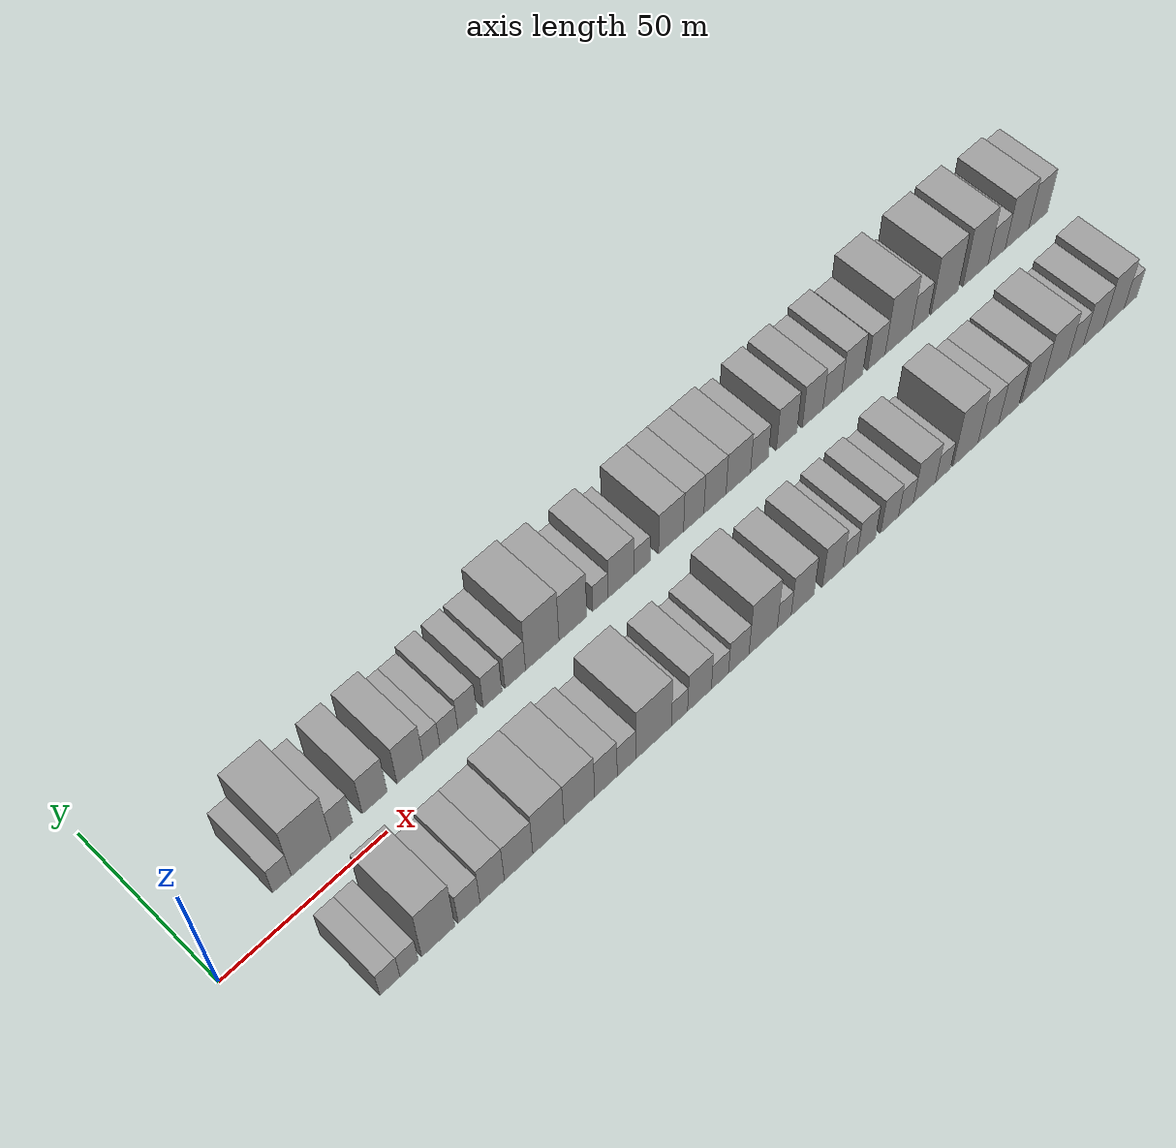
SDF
<sdf version="1.6">
 <world name="default">
  <scene>
   <sky><clouds><speed>12</speed></clouds></sky>
   <ambient>0.4 0.4 0.4 1</ambient>
   <background>0.7 0.7 0.7 1</background>
   <shadows>1</shadows>
  </scene>
  <gravity>0 0 -9.8066</gravity>
  <magnetic_field>6e-06 2.3e-05 -4.2e-05</magnetic_field>
  <physics default="0" name="default_physics" type="ode">
   <ode>
    <solver>
     <type>quick</type>
     <iters>10</iters>
     <sor>1.0</sor>
     <use_dynamic_moi_rescaling>0</use_dynamic_moi_rescaling>
    </solver>
    <constraints>
     <cfm>0</cfm>
     <erp>0.2</erp>
     <contact_max_correcting_vel>100</contact_max_correcting_vel>
     <contact_surface_layer>0.001</contact_surface_layer>
    </constraints>
   </ode>
   <max_step_size>0.004</max_step_size>
   <real_time_factor>1</real_time_factor>
   <real_time_update_rate>250</real_time_update_rate>
  </physics>
  <light name="sun" type="directional">
   <pose>0 0 10 0 0 0</pose>
   <diffuse>0.8 0.8 0.8 1</diffuse>
   <specular>0.2 0.2 0.2 1</specular>
   <attenuation>
    <range>1000</range>
    <constant>0.9</constant>
    <linear>0.01</linear>
    <quadratic>0.001</quadratic>
   </attenuation>
   <direction>-0.5 0.1 -0.9</direction>
  </light>
  <model name="building_1">
   <static>1</static>
   <pose>24.7903 17.5000 0 0.000000 0.000000 1.570796</pose>
   <link name="link">
    <pose>0 0 6.00 0 0 0</pose>
    <collision name="collision"><geometry><box><size>20.0000 5.5807 12.0000</size></box></geometry></collision>
    <visual name="visual">
     <cast_shadows>0</cast_shadows>
     <geometry><box><size>20.0000 5.5807 12.0000</size></box></geometry>
     <material>
      <script>
       <uri>model://grey_wall/materials/scripts</uri>
       <uri>model://grey_wall/materials/textures</uri>
       <name>vrc/grey_wall</name>
      </script>
     </material>
    </visual>
   </link>
  </model>
  <model name="building_2">
   <static>1</static>
   <pose>33.5785 17.5000 0 0.000000 0.000000 1.570796</pose>
   <link name="link">
    <pose>0 0 12.00 0 0 0</pose>
    <collision name="collision"><geometry><box><size>20.0000 11.9957 24.0000</size></box></geometry></collision>
    <visual name="visual">
     <cast_shadows>0</cast_shadows>
     <geometry><box><size>20.0000 11.9957 24.0000</size></box></geometry>
     <material>
      <script>
       <uri>model://grey_wall/materials/scripts</uri>
       <uri>model://grey_wall/materials/textures</uri>
       <name>vrc/grey_wall</name>
      </script>
     </material>
    </visual>
   </link>
  </model>
  <model name="building_3">
   <static>1</static>
   <pose>42.7927 17.5000 0 0.000000 0.000000 1.570796</pose>
   <link name="link">
    <pose>0 0 7.50 0 0 0</pose>
    <collision name="collision"><geometry><box><size>20.0000 6.4326 15.0000</size></box></geometry></collision>
    <visual name="visual">
     <cast_shadows>0</cast_shadows>
     <geometry><box><size>20.0000 6.4326 15.0000</size></box></geometry>
     <material>
      <script>
       <uri>model://grey_wall/materials/scripts</uri>
       <uri>model://grey_wall/materials/textures</uri>
       <name>vrc/grey_wall</name>
      </script>
     </material>
    </visual>
   </link>
  </model>
  <model name="building_4">
   <static>1</static>
   <pose>52.8391 17.5000 0 0.000000 0.000000 1.570796</pose>
   <link name="link">
    <pose>0 0 9.00 0 0 0</pose>
    <collision name="collision"><geometry><box><size>20.0000 7.6602 18.0000</size></box></geometry></collision>
    <visual name="visual">
     <cast_shadows>0</cast_shadows>
     <geometry><box><size>20.0000 7.6602 18.0000</size></box></geometry>
     <material>
      <script>
       <uri>model://grey_wall/materials/scripts</uri>
       <uri>model://grey_wall/materials/textures</uri>
       <name>vrc/grey_wall</name>
      </script>
     </material>
    </visual>
   </link>
  </model>
  <model name="building_5">
   <static>1</static>
   <pose>63.7903 17.5000 0 0.000000 0.000000 1.570796</pose>
   <link name="link">
    <pose>0 0 9.00 0 0 0</pose>
    <collision name="collision"><geometry><box><size>20.0000 8.2422 18.0000</size></box></geometry></collision>
    <visual name="visual">
     <cast_shadows>0</cast_shadows>
     <geometry><box><size>20.0000 8.2422 18.0000</size></box></geometry>
     <material>
      <script>
       <uri>model://grey_wall/materials/scripts</uri>
       <uri>model://grey_wall/materials/textures</uri>
       <name>vrc/grey_wall</name>
      </script>
     </material>
    </visual>
   </link>
  </model>
  <model name="building_6">
   <static>1</static>
   <pose>70.5453 17.5000 0 0.000000 0.000000 1.570796</pose>
   <link name="link">
    <pose>0 0 6.00 0 0 0</pose>
    <collision name="collision"><geometry><box><size>20.0000 5.2677 12.0000</size></box></geometry></collision>
    <visual name="visual">
     <cast_shadows>0</cast_shadows>
     <geometry><box><size>20.0000 5.2677 12.0000</size></box></geometry>
     <material>
      <script>
       <uri>model://grey_wall/materials/scripts</uri>
       <uri>model://grey_wall/materials/textures</uri>
       <name>vrc/grey_wall</name>
      </script>
     </material>
    </visual>
   </link>
  </model>
  <model name="building_7">
   <static>1</static>
   <pose>76.0698 17.5000 0 0.000000 0.000000 1.570796</pose>
   <link name="link">
    <pose>0 0 6.00 0 0 0</pose>
    <collision name="collision"><geometry><box><size>20.0000 5.7813 12.0000</size></box></geometry></collision>
    <visual name="visual">
     <cast_shadows>0</cast_shadows>
     <geometry><box><size>20.0000 5.7813 12.0000</size></box></geometry>
     <material>
      <script>
       <uri>model://grey_wall/materials/scripts</uri>
       <uri>model://grey_wall/materials/textures</uri>
       <name>vrc/grey_wall</name>
      </script>
     </material>
    </visual>
   </link>
  </model>
  <model name="building_8">
   <static>1</static>
   <pose>82.0250 17.5000 0 0.000000 0.000000 1.570796</pose>
   <link name="link">
    <pose>0 0 7.50 0 0 0</pose>
    <collision name="collision"><geometry><box><size>20.0000 6.1293 15.0000</size></box></geometry></collision>
    <visual name="visual">
     <cast_shadows>0</cast_shadows>
     <geometry><box><size>20.0000 6.1293 15.0000</size></box></geometry>
     <material>
      <script>
       <uri>model://grey_wall/materials/scripts</uri>
       <uri>model://grey_wall/materials/textures</uri>
       <name>vrc/grey_wall</name>
      </script>
     </material>
    </visual>
   </link>
  </model>
  <model name="building_9">
   <static>1</static>
   <pose>90.1376 17.5000 0 0.000000 0.000000 1.570796</pose>
   <link name="link">
    <pose>0 0 7.50 0 0 0</pose>
    <collision name="collision"><geometry><box><size>20.0000 6.0958 15.0000</size></box></geometry></collision>
    <visual name="visual">
     <cast_shadows>0</cast_shadows>
     <geometry><box><size>20.0000 6.0958 15.0000</size></box></geometry>
     <material>
      <script>
       <uri>model://grey_wall/materials/scripts</uri>
       <uri>model://grey_wall/materials/textures</uri>
       <name>vrc/grey_wall</name>
      </script>
     </material>
    </visual>
   </link>
  </model>
  <model name="building_10">
   <static>1</static>
   <pose>97.5536 17.5000 0 0.000000 0.000000 1.570796</pose>
   <link name="link">
    <pose>0 0 7.50 0 0 0</pose>
    <collision name="collision"><geometry><box><size>20.0000 6.7362 15.0000</size></box></geometry></collision>
    <visual name="visual">
     <cast_shadows>0</cast_shadows>
     <geometry><box><size>20.0000 6.7362 15.0000</size></box></geometry>
     <material>
      <script>
       <uri>model://grey_wall/materials/scripts</uri>
       <uri>model://grey_wall/materials/textures</uri>
       <name>vrc/grey_wall</name>
      </script>
     </material>
    </visual>
   </link>
  </model>
  <model name="building_11">
   <static>1</static>
   <pose>106.5154 17.5000 0 0.000000 0.000000 1.570796</pose>
   <link name="link">
    <pose>0 0 12.00 0 0 0</pose>
    <collision name="collision"><geometry><box><size>20.0000 11.1872 24.0000</size></box></geometry></collision>
    <visual name="visual">
     <cast_shadows>0</cast_shadows>
     <geometry><box><size>20.0000 11.1872 24.0000</size></box></geometry>
     <material>
      <script>
       <uri>model://grey_wall/materials/scripts</uri>
       <uri>model://grey_wall/materials/textures</uri>
       <name>vrc/grey_wall</name>
      </script>
     </material>
    </visual>
   </link>
  </model>
  <model name="building_12">
   <static>1</static>
   <pose>116.8096 17.5000 0 0.000000 0.000000 1.570796</pose>
   <link name="link">
    <pose>0 0 10.50 0 0 0</pose>
    <collision name="collision"><geometry><box><size>20.0000 9.4012 21.0000</size></box></geometry></collision>
    <visual name="visual">
     <cast_shadows>0</cast_shadows>
     <geometry><box><size>20.0000 9.4012 21.0000</size></box></geometry>
     <material>
      <script>
       <uri>model://grey_wall/materials/scripts</uri>
       <uri>model://grey_wall/materials/textures</uri>
       <name>vrc/grey_wall</name>
      </script>
     </material>
    </visual>
   </link>
  </model>
  <model name="building_13">
   <static>1</static>
   <pose>126.1650 17.5000 0 0.000000 0.000000 1.570796</pose>
   <link name="link">
    <pose>0 0 6.00 0 0 0</pose>
    <collision name="collision"><geometry><box><size>20.0000 5.3096 12.0000</size></box></geometry></collision>
    <visual name="visual">
     <cast_shadows>0</cast_shadows>
     <geometry><box><size>20.0000 5.3096 12.0000</size></box></geometry>
     <material>
      <script>
       <uri>model://grey_wall/materials/scripts</uri>
       <uri>model://grey_wall/materials/textures</uri>
       <name>vrc/grey_wall</name>
      </script>
     </material>
    </visual>
   </link>
  </model>
  <model name="building_14">
   <static>1</static>
   <pose>133.2115 17.5000 0 0.000000 0.000000 1.570796</pose>
   <link name="link">
    <pose>0 0 9.00 0 0 0</pose>
    <collision name="collision"><geometry><box><size>20.0000 8.7833 18.0000</size></box></geometry></collision>
    <visual name="visual">
     <cast_shadows>0</cast_shadows>
     <geometry><box><size>20.0000 8.7833 18.0000</size></box></geometry>
     <material>
      <script>
       <uri>model://grey_wall/materials/scripts</uri>
       <uri>model://grey_wall/materials/textures</uri>
       <name>vrc/grey_wall</name>
      </script>
     </material>
    </visual>
   </link>
  </model>
  <model name="building_15">
   <static>1</static>
   <pose>140.4692 17.5000 0 0.000000 0.000000 1.570796</pose>
   <link name="link">
    <pose>0 0 6.00 0 0 0</pose>
    <collision name="collision"><geometry><box><size>20.0000 5.7321 12.0000</size></box></geometry></collision>
    <visual name="visual">
     <cast_shadows>0</cast_shadows>
     <geometry><box><size>20.0000 5.7321 12.0000</size></box></geometry>
     <material>
      <script>
       <uri>model://grey_wall/materials/scripts</uri>
       <uri>model://grey_wall/materials/textures</uri>
       <name>vrc/grey_wall</name>
      </script>
     </material>
    </visual>
   </link>
  </model>
  <model name="building_16">
   <static>1</static>
   <pose>150.7560 17.5000 0 0.000000 0.000000 1.570796</pose>
   <link name="link">
    <pose>0 0 9.00 0 0 0</pose>
    <collision name="collision"><geometry><box><size>20.0000 8.8416 18.0000</size></box></geometry></collision>
    <visual name="visual">
     <cast_shadows>0</cast_shadows>
     <geometry><box><size>20.0000 8.8416 18.0000</size></box></geometry>
     <material>
      <script>
       <uri>model://grey_wall/materials/scripts</uri>
       <uri>model://grey_wall/materials/textures</uri>
       <name>vrc/grey_wall</name>
      </script>
     </material>
    </visual>
   </link>
  </model>
  <model name="building_17">
   <static>1</static>
   <pose>158.8325 17.5000 0 0.000000 0.000000 1.570796</pose>
   <link name="link">
    <pose>0 0 9.00 0 0 0</pose>
    <collision name="collision"><geometry><box><size>20.0000 7.3114 18.0000</size></box></geometry></collision>
    <visual name="visual">
     <cast_shadows>0</cast_shadows>
     <geometry><box><size>20.0000 7.3114 18.0000</size></box></geometry>
     <material>
      <script>
       <uri>model://grey_wall/materials/scripts</uri>
       <uri>model://grey_wall/materials/textures</uri>
       <name>vrc/grey_wall</name>
      </script>
     </material>
    </visual>
   </link>
  </model>
  <model name="building_18">
   <static>1</static>
   <pose>166.4875 17.5000 0 0.000000 0.000000 1.570796</pose>
   <link name="link">
    <pose>0 0 9.00 0 0 0</pose>
    <collision name="collision"><geometry><box><size>20.0000 7.9986 18.0000</size></box></geometry></collision>
    <visual name="visual">
     <cast_shadows>0</cast_shadows>
     <geometry><box><size>20.0000 7.9986 18.0000</size></box></geometry>
     <material>
      <script>
       <uri>model://grey_wall/materials/scripts</uri>
       <uri>model://grey_wall/materials/textures</uri>
       <name>vrc/grey_wall</name>
      </script>
     </material>
    </visual>
   </link>
  </model>
  <model name="building_19">
   <static>1</static>
   <pose>174.9716 17.5000 0 0.000000 0.000000 1.570796</pose>
   <link name="link">
    <pose>0 0 9.00 0 0 0</pose>
    <collision name="collision"><geometry><box><size>20.0000 8.9696 18.0000</size></box></geometry></collision>
    <visual name="visual">
     <cast_shadows>0</cast_shadows>
     <geometry><box><size>20.0000 8.9696 18.0000</size></box></geometry>
     <material>
      <script>
       <uri>model://grey_wall/materials/scripts</uri>
       <uri>model://grey_wall/materials/textures</uri>
       <name>vrc/grey_wall</name>
      </script>
     </material>
    </visual>
   </link>
  </model>
  <model name="building_20">
   <static>1</static>
   <pose>182.7605 17.5000 0 0.000000 0.000000 1.570796</pose>
   <link name="link">
    <pose>0 0 7.50 0 0 0</pose>
    <collision name="collision"><geometry><box><size>20.0000 6.6081 15.0000</size></box></geometry></collision>
    <visual name="visual">
     <cast_shadows>0</cast_shadows>
     <geometry><box><size>20.0000 6.6081 15.0000</size></box></geometry>
     <material>
      <script>
       <uri>model://grey_wall/materials/scripts</uri>
       <uri>model://grey_wall/materials/textures</uri>
       <name>vrc/grey_wall</name>
      </script>
     </material>
    </visual>
   </link>
  </model>
  <model name="building_21">
   <static>1</static>
   <pose>192.9308 17.5000 0 0.000000 0.000000 1.570796</pose>
   <link name="link">
    <pose>0 0 9.00 0 0 0</pose>
    <collision name="collision"><geometry><box><size>20.0000 7.7326 18.0000</size></box></geometry></collision>
    <visual name="visual">
     <cast_shadows>0</cast_shadows>
     <geometry><box><size>20.0000 7.7326 18.0000</size></box></geometry>
     <material>
      <script>
       <uri>model://grey_wall/materials/scripts</uri>
       <uri>model://grey_wall/materials/textures</uri>
       <name>vrc/grey_wall</name>
      </script>
     </material>
    </visual>
   </link>
  </model>
  <model name="building_22">
   <static>1</static>
   <pose>202.7216 17.5000 0 0.000000 0.000000 1.570796</pose>
   <link name="link">
    <pose>0 0 9.00 0 0 0</pose>
    <collision name="collision"><geometry><box><size>20.0000 7.8489 18.0000</size></box></geometry></collision>
    <visual name="visual">
     <cast_shadows>0</cast_shadows>
     <geometry><box><size>20.0000 7.8489 18.0000</size></box></geometry>
     <material>
      <script>
       <uri>model://grey_wall/materials/scripts</uri>
       <uri>model://grey_wall/materials/textures</uri>
       <name>vrc/grey_wall</name>
      </script>
     </material>
    </visual>
   </link>
  </model>
  <model name="building_23">
   <static>1</static>
   <pose>210.2408 17.5000 0 0.000000 0.000000 1.570796</pose>
   <link name="link">
    <pose>0 0 7.50 0 0 0</pose>
    <collision name="collision"><geometry><box><size>20.0000 7.1895 15.0000</size></box></geometry></collision>
    <visual name="visual">
     <cast_shadows>0</cast_shadows>
     <geometry><box><size>20.0000 7.1895 15.0000</size></box></geometry>
     <material>
      <script>
       <uri>model://grey_wall/materials/scripts</uri>
       <uri>model://grey_wall/materials/textures</uri>
       <name>vrc/grey_wall</name>
      </script>
     </material>
    </visual>
   </link>
  </model>
  <model name="building_24">
   <static>1</static>
   <pose>217.9297 17.5000 0 0.000000 0.000000 1.570796</pose>
   <link name="link">
    <pose>0 0 9.00 0 0 0</pose>
    <collision name="collision"><geometry><box><size>20.0000 8.1882 18.0000</size></box></geometry></collision>
    <visual name="visual">
     <cast_shadows>0</cast_shadows>
     <geometry><box><size>20.0000 8.1882 18.0000</size></box></geometry>
     <material>
      <script>
       <uri>model://grey_wall/materials/scripts</uri>
       <uri>model://grey_wall/materials/textures</uri>
       <name>vrc/grey_wall</name>
      </script>
     </material>
    </visual>
   </link>
  </model>
  <model name="building_25">
   <static>1</static>
   <pose>227.4332 17.5000 0 0.000000 0.000000 1.570796</pose>
   <link name="link">
    <pose>0 0 7.50 0 0 0</pose>
    <collision name="collision"><geometry><box><size>20.0000 6.8190 15.0000</size></box></geometry></collision>
    <visual name="visual">
     <cast_shadows>0</cast_shadows>
     <geometry><box><size>20.0000 6.8190 15.0000</size></box></geometry>
     <material>
      <script>
       <uri>model://grey_wall/materials/scripts</uri>
       <uri>model://grey_wall/materials/textures</uri>
       <name>vrc/grey_wall</name>
      </script>
     </material>
    </visual>
   </link>
  </model>
  <model name="building_26">
   <static>1</static>
   <pose>236.1009 17.5000 0 0.000000 0.000000 1.570796</pose>
   <link name="link">
    <pose>0 0 12.00 0 0 0</pose>
    <collision name="collision"><geometry><box><size>20.0000 10.5164 24.0000</size></box></geometry></collision>
    <visual name="visual">
     <cast_shadows>0</cast_shadows>
     <geometry><box><size>20.0000 10.5164 24.0000</size></box></geometry>
     <material>
      <script>
       <uri>model://grey_wall/materials/scripts</uri>
       <uri>model://grey_wall/materials/textures</uri>
       <name>vrc/grey_wall</name>
      </script>
     </material>
    </visual>
   </link>
  </model>
  <model name="building_27">
   <static>1</static>
   <pose>244.7884 17.5000 0 0.000000 0.000000 1.570796</pose>
   <link name="link">
    <pose>0 0 7.50 0 0 0</pose>
    <collision name="collision"><geometry><box><size>20.0000 6.8587 15.0000</size></box></geometry></collision>
    <visual name="visual">
     <cast_shadows>0</cast_shadows>
     <geometry><box><size>20.0000 6.8587 15.0000</size></box></geometry>
     <material>
      <script>
       <uri>model://grey_wall/materials/scripts</uri>
       <uri>model://grey_wall/materials/textures</uri>
       <name>vrc/grey_wall</name>
      </script>
     </material>
    </visual>
   </link>
  </model>
  <model name="building_28">
   <static>1</static>
   <pose>254.7375 17.5000 0 0.000000 0.000000 1.570796</pose>
   <link name="link">
    <pose>0 0 12.00 0 0 0</pose>
    <collision name="collision"><geometry><box><size>20.0000 11.0396 24.0000</size></box></geometry></collision>
    <visual name="visual">
     <cast_shadows>0</cast_shadows>
     <geometry><box><size>20.0000 11.0396 24.0000</size></box></geometry>
     <material>
      <script>
       <uri>model://grey_wall/materials/scripts</uri>
       <uri>model://grey_wall/materials/textures</uri>
       <name>vrc/grey_wall</name>
      </script>
     </material>
    </visual>
   </link>
  </model>
  <model name="building_29">
   <static>1</static>
   <pose>267.4569 17.5000 0 0.000000 0.000000 1.570796</pose>
   <link name="link">
    <pose>0 0 12.00 0 0 0</pose>
    <collision name="collision"><geometry><box><size>20.0000 10.3992 24.0000</size></box></geometry></collision>
    <visual name="visual">
     <cast_shadows>0</cast_shadows>
     <geometry><box><size>20.0000 10.3992 24.0000</size></box></geometry>
     <material>
      <script>
       <uri>model://grey_wall/materials/scripts</uri>
       <uri>model://grey_wall/materials/textures</uri>
       <name>vrc/grey_wall</name>
      </script>
     </material>
    </visual>
   </link>
  </model>
  <model name="building_30">
   <static>1</static>
   <pose>276.2368 17.5000 0 0.000000 0.000000 1.570796</pose>
   <link name="link">
    <pose>0 0 7.50 0 0 0</pose>
    <collision name="collision"><geometry><box><size>20.0000 7.1605 15.0000</size></box></geometry></collision>
    <visual name="visual">
     <cast_shadows>0</cast_shadows>
     <geometry><box><size>20.0000 7.1605 15.0000</size></box></geometry>
     <material>
      <script>
       <uri>model://grey_wall/materials/scripts</uri>
       <uri>model://grey_wall/materials/textures</uri>
       <name>vrc/grey_wall</name>
      </script>
     </material>
    </visual>
   </link>
  </model>
  <model name="building_31">
   <static>1</static>
   <pose>284.8316 17.5000 0 0.000000 0.000000 1.570796</pose>
   <link name="link">
    <pose>0 0 10.50 0 0 0</pose>
    <collision name="collision"><geometry><box><size>20.0000 10.0290 21.0000</size></box></geometry></collision>
    <visual name="visual">
     <cast_shadows>0</cast_shadows>
     <geometry><box><size>20.0000 10.0290 21.0000</size></box></geometry>
     <material>
      <script>
       <uri>model://grey_wall/materials/scripts</uri>
       <uri>model://grey_wall/materials/textures</uri>
       <name>vrc/grey_wall</name>
      </script>
     </material>
    </visual>
   </link>
  </model>
  <model name="building_32">
   <static>1</static>
   <pose>293.8147 17.5000 0 0.000000 0.000000 1.570796</pose>
   <link name="link">
    <pose>0 0 9.00 0 0 0</pose>
    <collision name="collision"><geometry><box><size>20.0000 7.9373 18.0000</size></box></geometry></collision>
    <visual name="visual">
     <cast_shadows>0</cast_shadows>
     <geometry><box><size>20.0000 7.9373 18.0000</size></box></geometry>
     <material>
      <script>
       <uri>model://grey_wall/materials/scripts</uri>
       <uri>model://grey_wall/materials/textures</uri>
       <name>vrc/grey_wall</name>
      </script>
     </material>
    </visual>
   </link>
  </model>
  <model name="building_33">
   <static>1</static>
   <pose>25.9741 -17.5000 0 0.000000 0.000000 1.570796</pose>
   <link name="link">
    <pose>0 0 6.00 0 0 0</pose>
    <collision name="collision"><geometry><box><size>20.0000 5.9482 12.0000</size></box></geometry></collision>
    <visual name="visual">
     <cast_shadows>0</cast_shadows>
     <geometry><box><size>20.0000 5.9482 12.0000</size></box></geometry>
     <material>
      <script>
       <uri>model://grey_wall/materials/scripts</uri>
       <uri>model://grey_wall/materials/textures</uri>
       <name>vrc/grey_wall</name>
      </script>
     </material>
    </visual>
   </link>
  </model>
  <model name="building_34">
   <static>1</static>
   <pose>31.6685 -17.5000 0 0.000000 0.000000 1.570796</pose>
   <link name="link">
    <pose>0 0 6.00 0 0 0</pose>
    <collision name="collision"><geometry><box><size>20.0000 5.4406 12.0000</size></box></geometry></collision>
    <visual name="visual">
     <cast_shadows>0</cast_shadows>
     <geometry><box><size>20.0000 5.4406 12.0000</size></box></geometry>
     <material>
      <script>
       <uri>model://grey_wall/materials/scripts</uri>
       <uri>model://grey_wall/materials/textures</uri>
       <name>vrc/grey_wall</name>
      </script>
     </material>
    </visual>
   </link>
  </model>
  <model name="building_35">
   <static>1</static>
   <pose>40.4139 -17.5000 0 0.000000 0.000000 1.570796</pose>
   <link name="link">
    <pose>0 0 12.00 0 0 0</pose>
    <collision name="collision"><geometry><box><size>20.0000 10.0501 24.0000</size></box></geometry></collision>
    <visual name="visual">
     <cast_shadows>0</cast_shadows>
     <geometry><box><size>20.0000 10.0501 24.0000</size></box></geometry>
     <material>
      <script>
       <uri>model://grey_wall/materials/scripts</uri>
       <uri>model://grey_wall/materials/textures</uri>
       <name>vrc/grey_wall</name>
      </script>
     </material>
    </visual>
   </link>
  </model>
  <model name="building_36">
   <static>1</static>
   <pose>49.7984 -17.5000 0 0.000000 0.000000 1.570796</pose>
   <link name="link">
    <pose>0 0 7.50 0 0 0</pose>
    <collision name="collision"><geometry><box><size>20.0000 6.7190 15.0000</size></box></geometry></collision>
    <visual name="visual">
     <cast_shadows>0</cast_shadows>
     <geometry><box><size>20.0000 6.7190 15.0000</size></box></geometry>
     <material>
      <script>
       <uri>model://grey_wall/materials/scripts</uri>
       <uri>model://grey_wall/materials/textures</uri>
       <name>vrc/grey_wall</name>
      </script>
     </material>
    </visual>
   </link>
  </model>
  <model name="building_37">
   <static>1</static>
   <pose>56.9178 -17.5000 0 0.000000 0.000000 1.570796</pose>
   <link name="link">
    <pose>0 0 9.00 0 0 0</pose>
    <collision name="collision"><geometry><box><size>20.0000 7.5198 18.0000</size></box></geometry></collision>
    <visual name="visual">
     <cast_shadows>0</cast_shadows>
     <geometry><box><size>20.0000 7.5198 18.0000</size></box></geometry>
     <material>
      <script>
       <uri>model://grey_wall/materials/scripts</uri>
       <uri>model://grey_wall/materials/textures</uri>
       <name>vrc/grey_wall</name>
      </script>
     </material>
    </visual>
   </link>
  </model>
  <model name="building_38">
   <static>1</static>
   <pose>65.1405 -17.5000 0 0.000000 0.000000 1.570796</pose>
   <link name="link">
    <pose>0 0 9.00 0 0 0</pose>
    <collision name="collision"><geometry><box><size>20.0000 8.9255 18.0000</size></box></geometry></collision>
    <visual name="visual">
     <cast_shadows>0</cast_shadows>
     <geometry><box><size>20.0000 8.9255 18.0000</size></box></geometry>
     <material>
      <script>
       <uri>model://grey_wall/materials/scripts</uri>
       <uri>model://grey_wall/materials/textures</uri>
       <name>vrc/grey_wall</name>
      </script>
     </material>
    </visual>
   </link>
  </model>
  <model name="building_39">
   <static>1</static>
   <pose>74.5633 -17.5000 0 0.000000 0.000000 1.570796</pose>
   <link name="link">
    <pose>0 0 10.50 0 0 0</pose>
    <collision name="collision"><geometry><box><size>20.0000 9.9201 21.0000</size></box></geometry></collision>
    <visual name="visual">
     <cast_shadows>0</cast_shadows>
     <geometry><box><size>20.0000 9.9201 21.0000</size></box></geometry>
     <material>
      <script>
       <uri>model://grey_wall/materials/scripts</uri>
       <uri>model://grey_wall/materials/textures</uri>
       <name>vrc/grey_wall</name>
      </script>
     </material>
    </visual>
   </link>
  </model>
  <model name="building_40">
   <static>1</static>
   <pose>84.4446 -17.5000 0 0.000000 0.000000 1.570796</pose>
   <link name="link">
    <pose>0 0 10.50 0 0 0</pose>
    <collision name="collision"><geometry><box><size>20.0000 9.8425 21.0000</size></box></geometry></collision>
    <visual name="visual">
     <cast_shadows>0</cast_shadows>
     <geometry><box><size>20.0000 9.8425 21.0000</size></box></geometry>
     <material>
      <script>
       <uri>model://grey_wall/materials/scripts</uri>
       <uri>model://grey_wall/materials/textures</uri>
       <name>vrc/grey_wall</name>
      </script>
     </material>
    </visual>
   </link>
  </model>
  <model name="building_41">
   <static>1</static>
   <pose>93.0471 -17.5000 0 0.000000 0.000000 1.570796</pose>
   <link name="link">
    <pose>0 0 9.00 0 0 0</pose>
    <collision name="collision"><geometry><box><size>20.0000 7.3626 18.0000</size></box></geometry></collision>
    <visual name="visual">
     <cast_shadows>0</cast_shadows>
     <geometry><box><size>20.0000 7.3626 18.0000</size></box></geometry>
     <material>
      <script>
       <uri>model://grey_wall/materials/scripts</uri>
       <uri>model://grey_wall/materials/textures</uri>
       <name>vrc/grey_wall</name>
      </script>
     </material>
    </visual>
   </link>
  </model>
  <model name="building_42">
   <static>1</static>
   <pose>99.8479 -17.5000 0 0.000000 0.000000 1.570796</pose>
   <link name="link">
    <pose>0 0 7.50 0 0 0</pose>
    <collision name="collision"><geometry><box><size>20.0000 6.2390 15.0000</size></box></geometry></collision>
    <visual name="visual">
     <cast_shadows>0</cast_shadows>
     <geometry><box><size>20.0000 6.2390 15.0000</size></box></geometry>
     <material>
      <script>
       <uri>model://grey_wall/materials/scripts</uri>
       <uri>model://grey_wall/materials/textures</uri>
       <name>vrc/grey_wall</name>
      </script>
     </material>
    </visual>
   </link>
  </model>
  <model name="building_43">
   <static>1</static>
   <pose>108.8641 -17.5000 0 0.000000 0.000000 1.570796</pose>
   <link name="link">
    <pose>0 0 12.00 0 0 0</pose>
    <collision name="collision"><geometry><box><size>20.0000 11.7935 24.0000</size></box></geometry></collision>
    <visual name="visual">
     <cast_shadows>0</cast_shadows>
     <geometry><box><size>20.0000 11.7935 24.0000</size></box></geometry>
     <material>
      <script>
       <uri>model://grey_wall/materials/scripts</uri>
       <uri>model://grey_wall/materials/textures</uri>
       <name>vrc/grey_wall</name>
      </script>
     </material>
    </visual>
   </link>
  </model>
  <model name="building_44">
   <static>1</static>
   <pose>117.4999 -17.5000 0 0.000000 0.000000 1.570796</pose>
   <link name="link">
    <pose>0 0 6.00 0 0 0</pose>
    <collision name="collision"><geometry><box><size>20.0000 5.4781 12.0000</size></box></geometry></collision>
    <visual name="visual">
     <cast_shadows>0</cast_shadows>
     <geometry><box><size>20.0000 5.4781 12.0000</size></box></geometry>
     <material>
      <script>
       <uri>model://grey_wall/materials/scripts</uri>
       <uri>model://grey_wall/materials/textures</uri>
       <name>vrc/grey_wall</name>
      </script>
     </material>
    </visual>
   </link>
  </model>
  <model name="building_45">
   <static>1</static>
   <pose>124.3053 -17.5000 0 0.000000 0.000000 1.570796</pose>
   <link name="link">
    <pose>0 0 9.00 0 0 0</pose>
    <collision name="collision"><geometry><box><size>20.0000 8.1327 18.0000</size></box></geometry></collision>
    <visual name="visual">
     <cast_shadows>0</cast_shadows>
     <geometry><box><size>20.0000 8.1327 18.0000</size></box></geometry>
     <material>
      <script>
       <uri>model://grey_wall/materials/scripts</uri>
       <uri>model://grey_wall/materials/textures</uri>
       <name>vrc/grey_wall</name>
      </script>
     </material>
    </visual>
   </link>
  </model>
  <model name="building_46">
   <static>1</static>
   <pose>131.3274 -17.5000 0 0.000000 0.000000 1.570796</pose>
   <link name="link">
    <pose>0 0 6.00 0 0 0</pose>
    <collision name="collision"><geometry><box><size>20.0000 5.9116 12.0000</size></box></geometry></collision>
    <visual name="visual">
     <cast_shadows>0</cast_shadows>
     <geometry><box><size>20.0000 5.9116 12.0000</size></box></geometry>
     <material>
      <script>
       <uri>model://grey_wall/materials/scripts</uri>
       <uri>model://grey_wall/materials/textures</uri>
       <name>vrc/grey_wall</name>
      </script>
     </material>
    </visual>
   </link>
  </model>
  <model name="building_47">
   <static>1</static>
   <pose>137.8564 -17.5000 0 0.000000 0.000000 1.570796</pose>
   <link name="link">
    <pose>0 0 7.50 0 0 0</pose>
    <collision name="collision"><geometry><box><size>20.0000 7.1464 15.0000</size></box></geometry></collision>
    <visual name="visual">
     <cast_shadows>0</cast_shadows>
     <geometry><box><size>20.0000 7.1464 15.0000</size></box></geometry>
     <material>
      <script>
       <uri>model://grey_wall/materials/scripts</uri>
       <uri>model://grey_wall/materials/textures</uri>
       <name>vrc/grey_wall</name>
      </script>
     </material>
    </visual>
   </link>
  </model>
  <model name="building_48">
   <static>1</static>
   <pose>146.4099 -17.5000 0 0.000000 0.000000 1.570796</pose>
   <link name="link">
    <pose>0 0 12.00 0 0 0</pose>
    <collision name="collision"><geometry><box><size>20.0000 9.9606 24.0000</size></box></geometry></collision>
    <visual name="visual">
     <cast_shadows>0</cast_shadows>
     <geometry><box><size>20.0000 9.9606 24.0000</size></box></geometry>
     <material>
      <script>
       <uri>model://grey_wall/materials/scripts</uri>
       <uri>model://grey_wall/materials/textures</uri>
       <name>vrc/grey_wall</name>
      </script>
     </material>
    </visual>
   </link>
  </model>
  <model name="building_49">
   <static>1</static>
   <pose>153.8694 -17.5000 0 0.000000 0.000000 1.570796</pose>
   <link name="link">
    <pose>0 0 6.00 0 0 0</pose>
    <collision name="collision"><geometry><box><size>20.0000 4.9584 12.0000</size></box></geometry></collision>
    <visual name="visual">
     <cast_shadows>0</cast_shadows>
     <geometry><box><size>20.0000 4.9584 12.0000</size></box></geometry>
     <material>
      <script>
       <uri>model://grey_wall/materials/scripts</uri>
       <uri>model://grey_wall/materials/textures</uri>
       <name>vrc/grey_wall</name>
      </script>
     </material>
    </visual>
   </link>
  </model>
  <model name="building_50">
   <static>1</static>
   <pose>160.4737 -17.5000 0 0.000000 0.000000 1.570796</pose>
   <link name="link">
    <pose>0 0 9.00 0 0 0</pose>
    <collision name="collision"><geometry><box><size>20.0000 8.2502 18.0000</size></box></geometry></collision>
    <visual name="visual">
     <cast_shadows>0</cast_shadows>
     <geometry><box><size>20.0000 8.2502 18.0000</size></box></geometry>
     <material>
      <script>
       <uri>model://grey_wall/materials/scripts</uri>
       <uri>model://grey_wall/materials/textures</uri>
       <name>vrc/grey_wall</name>
      </script>
     </material>
    </visual>
   </link>
  </model>
  <model name="building_51">
   <static>1</static>
   <pose>171.4000 -17.5000 0 0.000000 0.000000 1.570796</pose>
   <link name="link">
    <pose>0 0 9.00 0 0 0</pose>
    <collision name="collision"><geometry><box><size>20.0000 7.6023 18.0000</size></box></geometry></collision>
    <visual name="visual">
     <cast_shadows>0</cast_shadows>
     <geometry><box><size>20.0000 7.6023 18.0000</size></box></geometry>
     <material>
      <script>
       <uri>model://grey_wall/materials/scripts</uri>
       <uri>model://grey_wall/materials/textures</uri>
       <name>vrc/grey_wall</name>
      </script>
     </material>
    </visual>
   </link>
  </model>
  <model name="building_52">
   <static>1</static>
   <pose>177.7987 -17.5000 0 0.000000 0.000000 1.570796</pose>
   <link name="link">
    <pose>0 0 6.00 0 0 0</pose>
    <collision name="collision"><geometry><box><size>20.0000 5.1952 12.0000</size></box></geometry></collision>
    <visual name="visual">
     <cast_shadows>0</cast_shadows>
     <geometry><box><size>20.0000 5.1952 12.0000</size></box></geometry>
     <material>
      <script>
       <uri>model://grey_wall/materials/scripts</uri>
       <uri>model://grey_wall/materials/textures</uri>
       <name>vrc/grey_wall</name>
      </script>
     </material>
    </visual>
   </link>
  </model>
  <model name="building_53">
   <static>1</static>
   <pose>183.7909 -17.5000 0 0.000000 0.000000 1.570796</pose>
   <link name="link">
    <pose>0 0 7.50 0 0 0</pose>
    <collision name="collision"><geometry><box><size>20.0000 6.7891 15.0000</size></box></geometry></collision>
    <visual name="visual">
     <cast_shadows>0</cast_shadows>
     <geometry><box><size>20.0000 6.7891 15.0000</size></box></geometry>
     <material>
      <script>
       <uri>model://grey_wall/materials/scripts</uri>
       <uri>model://grey_wall/materials/textures</uri>
       <name>vrc/grey_wall</name>
      </script>
     </material>
    </visual>
   </link>
  </model>
  <model name="building_54">
   <static>1</static>
   <pose>192.5304 -17.5000 0 0.000000 0.000000 1.570796</pose>
   <link name="link">
    <pose>0 0 7.50 0 0 0</pose>
    <collision name="collision"><geometry><box><size>20.0000 6.6899 15.0000</size></box></geometry></collision>
    <visual name="visual">
     <cast_shadows>0</cast_shadows>
     <geometry><box><size>20.0000 6.6899 15.0000</size></box></geometry>
     <material>
      <script>
       <uri>model://grey_wall/materials/scripts</uri>
       <uri>model://grey_wall/materials/textures</uri>
       <name>vrc/grey_wall</name>
      </script>
     </material>
    </visual>
   </link>
  </model>
  <model name="building_55">
   <static>1</static>
   <pose>198.6888 -17.5000 0 0.000000 0.000000 1.570796</pose>
   <link name="link">
    <pose>0 0 6.00 0 0 0</pose>
    <collision name="collision"><geometry><box><size>20.0000 5.6268 12.0000</size></box></geometry></collision>
    <visual name="visual">
     <cast_shadows>0</cast_shadows>
     <geometry><box><size>20.0000 5.6268 12.0000</size></box></geometry>
     <material>
      <script>
       <uri>model://grey_wall/materials/scripts</uri>
       <uri>model://grey_wall/materials/textures</uri>
       <name>vrc/grey_wall</name>
      </script>
     </material>
    </visual>
   </link>
  </model>
  <model name="building_56">
   <static>1</static>
   <pose>205.7583 -17.5000 0 0.000000 0.000000 1.570796</pose>
   <link name="link">
    <pose>0 0 9.00 0 0 0</pose>
    <collision name="collision"><geometry><box><size>20.0000 8.5123 18.0000</size></box></geometry></collision>
    <visual name="visual">
     <cast_shadows>0</cast_shadows>
     <geometry><box><size>20.0000 8.5123 18.0000</size></box></geometry>
     <material>
      <script>
       <uri>model://grey_wall/materials/scripts</uri>
       <uri>model://grey_wall/materials/textures</uri>
       <name>vrc/grey_wall</name>
      </script>
     </material>
    </visual>
   </link>
  </model>
  <model name="building_57">
   <static>1</static>
   <pose>212.8949 -17.5000 0 0.000000 0.000000 1.570796</pose>
   <link name="link">
    <pose>0 0 6.00 0 0 0</pose>
    <collision name="collision"><geometry><box><size>20.0000 5.7610 12.0000</size></box></geometry></collision>
    <visual name="visual">
     <cast_shadows>0</cast_shadows>
     <geometry><box><size>20.0000 5.7610 12.0000</size></box></geometry>
     <material>
      <script>
       <uri>model://grey_wall/materials/scripts</uri>
       <uri>model://grey_wall/materials/textures</uri>
       <name>vrc/grey_wall</name>
      </script>
     </material>
    </visual>
   </link>
  </model>
  <model name="building_58">
   <static>1</static>
   <pose>221.6780 -17.5000 0 0.000000 0.000000 1.570796</pose>
   <link name="link">
    <pose>0 0 12.00 0 0 0</pose>
    <collision name="collision"><geometry><box><size>20.0000 9.8051 24.0000</size></box></geometry></collision>
    <visual name="visual">
     <cast_shadows>0</cast_shadows>
     <geometry><box><size>20.0000 9.8051 24.0000</size></box></geometry>
     <material>
      <script>
       <uri>model://grey_wall/materials/scripts</uri>
       <uri>model://grey_wall/materials/textures</uri>
       <name>vrc/grey_wall</name>
      </script>
     </material>
    </visual>
   </link>
  </model>
  <model name="building_59">
   <static>1</static>
   <pose>230.7055 -17.5000 0 0.000000 0.000000 1.570796</pose>
   <link name="link">
    <pose>0 0 9.00 0 0 0</pose>
    <collision name="collision"><geometry><box><size>20.0000 8.2501 18.0000</size></box></geometry></collision>
    <visual name="visual">
     <cast_shadows>0</cast_shadows>
     <geometry><box><size>20.0000 8.2501 18.0000</size></box></geometry>
     <material>
      <script>
       <uri>model://grey_wall/materials/scripts</uri>
       <uri>model://grey_wall/materials/textures</uri>
       <name>vrc/grey_wall</name>
      </script>
     </material>
    </visual>
   </link>
  </model>
  <model name="building_60">
   <static>1</static>
   <pose>238.8311 -17.5000 0 0.000000 0.000000 1.570796</pose>
   <link name="link">
    <pose>0 0 9.00 0 0 0</pose>
    <collision name="collision"><geometry><box><size>20.0000 8.0010 18.0000</size></box></geometry></collision>
    <visual name="visual">
     <cast_shadows>0</cast_shadows>
     <geometry><box><size>20.0000 8.0010 18.0000</size></box></geometry>
     <material>
      <script>
       <uri>model://grey_wall/materials/scripts</uri>
       <uri>model://grey_wall/materials/textures</uri>
       <name>vrc/grey_wall</name>
      </script>
     </material>
    </visual>
   </link>
  </model>
  <model name="building_61">
   <static>1</static>
   <pose>248.3233 -17.5000 0 0.000000 0.000000 1.570796</pose>
   <link name="link">
    <pose>0 0 9.00 0 0 0</pose>
    <collision name="collision"><geometry><box><size>20.0000 8.9833 18.0000</size></box></geometry></collision>
    <visual name="visual">
     <cast_shadows>0</cast_shadows>
     <geometry><box><size>20.0000 8.9833 18.0000</size></box></geometry>
     <material>
      <script>
       <uri>model://grey_wall/materials/scripts</uri>
       <uri>model://grey_wall/materials/textures</uri>
       <name>vrc/grey_wall</name>
      </script>
     </material>
    </visual>
   </link>
  </model>
  <model name="building_62">
   <static>1</static>
   <pose>257.8801 -17.5000 0 0.000000 0.000000 1.570796</pose>
   <link name="link">
    <pose>0 0 10.50 0 0 0</pose>
    <collision name="collision"><geometry><box><size>20.0000 10.1304 21.0000</size></box></geometry></collision>
    <visual name="visual">
     <cast_shadows>0</cast_shadows>
     <geometry><box><size>20.0000 10.1304 21.0000</size></box></geometry>
     <material>
      <script>
       <uri>model://grey_wall/materials/scripts</uri>
       <uri>model://grey_wall/materials/textures</uri>
       <name>vrc/grey_wall</name>
      </script>
     </material>
    </visual>
   </link>
  </model>
  <model name="building_63">
   <static>1</static>
   <pose>266.1226 -17.5000 0 0.000000 0.000000 1.570796</pose>
   <link name="link">
    <pose>0 0 7.50 0 0 0</pose>
    <collision name="collision"><geometry><box><size>20.0000 6.3545 15.0000</size></box></geometry></collision>
    <visual name="visual">
     <cast_shadows>0</cast_shadows>
     <geometry><box><size>20.0000 6.3545 15.0000</size></box></geometry>
     <material>
      <script>
       <uri>model://grey_wall/materials/scripts</uri>
       <uri>model://grey_wall/materials/textures</uri>
       <name>vrc/grey_wall</name>
      </script>
     </material>
    </visual>
   </link>
  </model>
  <model name="building_64">
   <static>1</static>
   <pose>273.5532 -17.5000 0 0.000000 0.000000 1.570796</pose>
   <link name="link">
    <pose>0 0 9.00 0 0 0</pose>
    <collision name="collision"><geometry><box><size>20.0000 8.5069 18.0000</size></box></geometry></collision>
    <visual name="visual">
     <cast_shadows>0</cast_shadows>
     <geometry><box><size>20.0000 8.5069 18.0000</size></box></geometry>
     <material>
      <script>
       <uri>model://grey_wall/materials/scripts</uri>
       <uri>model://grey_wall/materials/textures</uri>
       <name>vrc/grey_wall</name>
      </script>
     </material>
    </visual>
   </link>
  </model>
  <model name="building_65">
   <static>1</static>
   <pose>282.2309 -17.5000 0 0.000000 0.000000 1.570796</pose>
   <link name="link">
    <pose>0 0 10.50 0 0 0</pose>
    <collision name="collision"><geometry><box><size>20.0000 8.8484 21.0000</size></box></geometry></collision>
    <visual name="visual">
     <cast_shadows>0</cast_shadows>
     <geometry><box><size>20.0000 8.8484 21.0000</size></box></geometry>
     <material>
      <script>
       <uri>model://grey_wall/materials/scripts</uri>
       <uri>model://grey_wall/materials/textures</uri>
       <name>vrc/grey_wall</name>
      </script>
     </material>
    </visual>
   </link>
  </model>
  <model name="building_66">
   <static>1</static>
   <pose>289.3684 -17.5000 0 0.000000 0.000000 1.570796</pose>
   <link name="link">
    <pose>0 0 6.00 0 0 0</pose>
    <collision name="collision"><geometry><box><size>20.0000 5.4266 12.0000</size></box></geometry></collision>
    <visual name="visual">
     <cast_shadows>0</cast_shadows>
     <geometry><box><size>20.0000 5.4266 12.0000</size></box></geometry>
     <material>
      <script>
       <uri>model://grey_wall/materials/scripts</uri>
       <uri>model://grey_wall/materials/textures</uri>
       <name>vrc/grey_wall</name>
      </script>
     </material>
    </visual>
   </link>
  </model>
 </world>
</sdf>
